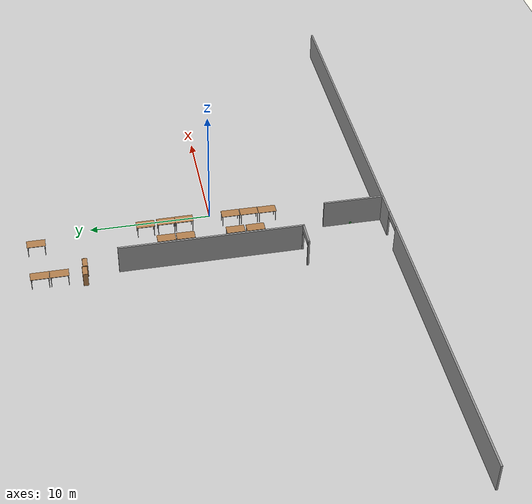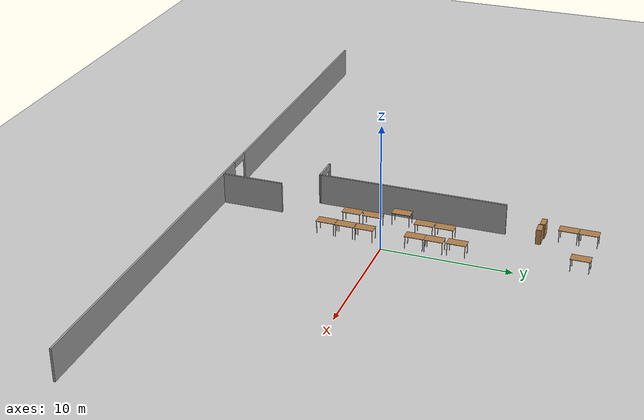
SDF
<sdf version="1.4">
 <world name="default">
  <model name="ground_plane">
   <static>1</static>
   <link name="link">
    <collision name="collision">
     <geometry><plane><normal>0 0 1</normal><size>100 100</size></plane></geometry>
    </collision>
    <visual name="visual">
     <cast_shadows>0</cast_shadows>
     <geometry><plane><normal>0 0 1</normal><size>100 100</size></plane></geometry>
     <material>
      <script><uri>file://media/materials/scripts/gazebo.material</uri><name>Gazebo/Grey</name></script>
     </material>
    </visual>
    <velocity_decay><linear>0</linear><angular>0</angular></velocity_decay>
   </link>
  </model>
  <model name="Shannon">
   <pose>-0.0406 0.68299 0 0 -0 0</pose>
   <link name="Wall_113">
    <pose>-6.33435 -7.42718 0 0 -0 3.12996</pose>
    <visual name="Wall_113_Visual_0">
     <pose>-0.982605 0 1.25 0 -0 0</pose>
     <geometry><box><size>0.174156 0.15 2.5</size></box></geometry>
     <material>
      <script><uri>file://media/materials/scripts/gazebo.material</uri><name>Gazebo/Grey</name></script>
      <ambient>1 1 1 1</ambient>
     </material>
    </visual>
    <collision name="Wall_113_Collision_0">
     <geometry><box><size>0.174156 0.15 2.5</size></box></geometry>
     <pose>-0.982605 0 1.25 0 -0 0</pose>
    </collision>
    <visual name="Wall_113_Visual_1">
     <pose>0.989375 0 1.25 0 -0 0</pose>
     <geometry><box><size>0.160617 0.15 2.5</size></box></geometry>
     <material>
      <script><uri>file://media/materials/scripts/gazebo.material</uri><name>Gazebo/Grey</name></script>
      <ambient>1 1 1 1</ambient>
     </material>
    </visual>
    <collision name="Wall_113_Collision_1">
     <geometry><box><size>0.160617 0.15 2.5</size></box></geometry>
     <pose>0.989375 0 1.25 0 -0 0</pose>
    </collision>
    <visual name="Wall_113_Visual_2">
     <pose>0.00677 0 2.25 0 -0 0</pose>
     <geometry><box><size>1.80459 0.15 0.5</size></box></geometry>
     <material>
      <script><uri>file://media/materials/scripts/gazebo.material</uri><name>Gazebo/Grey</name></script>
      <ambient>1 1 1 1</ambient>
     </material>
    </visual>
    <collision name="Wall_113_Collision_2">
     <geometry><box><size>1.80459 0.15 0.5</size></box></geometry>
     <pose>0.00677 0 2.25 0 -0 0</pose>
    </collision>
    <velocity_decay><linear>0</linear><angular>0</angular></velocity_decay>
   </link>
   <link name="Wall_12">
    <pose>-4.30964 -14.6736 0 0 -0 3.14159</pose>
    <visual name="Wall_12_Visual_0">
     <pose>-13.02 0 1.25 0 -0 0</pose>
     <geometry><box><size>27.46 0.15 2.5</size></box></geometry>
     <material>
      <script><uri>file://media/materials/scripts/gazebo.material</uri><name>Gazebo/Grey</name></script>
      <ambient>1 1 1 1</ambient>
     </material>
    </visual>
    <collision name="Wall_12_Collision_0">
     <geometry><box><size>27.46 0.15 2.5</size></box></geometry>
     <pose>-13.02 0 1.25 0 -0 0</pose>
    </collision>
    <visual name="Wall_12_Visual_1">
     <pose>14.6599 0 1.25 0 -0 0</pose>
     <geometry><box><size>24.1801 0.15 2.5</size></box></geometry>
     <material>
      <script><uri>file://media/materials/scripts/gazebo.material</uri><name>Gazebo/Grey</name></script>
      <ambient>1 1 1 1</ambient>
     </material>
    </visual>
    <collision name="Wall_12_Collision_1">
     <geometry><box><size>24.1801 0.15 2.5</size></box></geometry>
     <pose>14.6599 0 1.25 0 -0 0</pose>
    </collision>
    <visual name="Wall_12_Visual_2">
     <pose>1.63993 0 2.25 0 -0 0</pose>
     <geometry><box><size>1.85983 0.15 0.5</size></box></geometry>
     <material>
      <script><uri>file://media/materials/scripts/gazebo.material</uri><name>Gazebo/Grey</name></script>
      <ambient>1 1 1 1</ambient>
     </material>
    </visual>
    <collision name="Wall_12_Collision_2">
     <geometry><box><size>1.85983 0.15 0.5</size></box></geometry>
     <pose>1.63993 0 2.25 0 -0 0</pose>
    </collision>
    <velocity_decay><linear>0</linear><angular>0</angular></velocity_decay>
   </link>
   <link name="Wall_29">
    <collision name="Wall_29_Collision">
     <geometry><box><size>5 0.15 2.5</size></box></geometry>
     <pose>0 0 1.25 0 -0 0</pose>
    </collision>
    <visual name="Wall_29_Visual">
     <pose>0 0 1.25 0 -0 0</pose>
     <geometry><box><size>5 0.15 2.5</size></box></geometry>
     <material>
      <script><uri>file://media/materials/scripts/gazebo.material</uri><name>Gazebo/Grey</name></script>
      <ambient>1 1 1 1</ambient>
     </material>
    </visual>
    <pose>-2.95728 -12.2072 0 0 -0 1.5708</pose>
    <velocity_decay><linear>0</linear><angular>0</angular></velocity_decay>
   </link>
   <link name="Wall_37">
    <collision name="Wall_37_Collision">
     <geometry><box><size>15 0.15 2.5</size></box></geometry>
     <pose>0 0 1.25 0 -0 0</pose>
    </collision>
    <visual name="Wall_37_Visual">
     <pose>0 0 1.25 0 -0 0</pose>
     <geometry><box><size>15 0.15 2.5</size></box></geometry>
     <material>
      <script><uri>file://media/materials/scripts/gazebo.material</uri><name>Gazebo/Grey</name></script>
      <ambient>1 1 1 1</ambient>
     </material>
    </visual>
    <pose>-5.33974 -0.013741 0 0 -0 1.5708</pose>
    <velocity_decay><linear>0</linear><angular>0</angular></velocity_decay>
   </link>
   <static>1</static>
  </model>
  <model name="table_clone_clone">
   <static>1</static>
   <link name="link">
    <collision name="surface">
     <pose>0 0 1 0 -0 0</pose>
     <geometry><box><size>1.5 0.8 0.03</size></box></geometry>
    </collision>
    <visual name="visual1">
     <pose>0 0 1 0 -0 0</pose>
     <geometry><box><size>1.5 0.8 0.03</size></box></geometry>
     <material>
      <script><uri>file://media/materials/scripts/gazebo.material</uri><name>Gazebo/Wood</name></script>
     </material>
    </visual>
    <collision name="front_left_leg">
     <pose>0.68 0.38 0.5 0 -0 0</pose>
     <geometry><cylinder><radius>0.02</radius><length>1</length></cylinder></geometry>
    </collision>
    <visual name="front_left_leg">
     <pose>0.68 0.38 0.5 0 -0 0</pose>
     <geometry><cylinder><radius>0.02</radius><length>1</length></cylinder></geometry>
     <material>
      <script><uri>file://media/materials/scripts/gazebo.material</uri><name>Gazebo/Grey</name></script>
     </material>
    </visual>
    <collision name="front_right_leg">
     <pose>0.68 -0.38 0.5 0 -0 0</pose>
     <geometry><cylinder><radius>0.02</radius><length>1</length></cylinder></geometry>
    </collision>
    <visual name="front_right_leg">
     <pose>0.68 -0.38 0.5 0 -0 0</pose>
     <geometry><cylinder><radius>0.02</radius><length>1</length></cylinder></geometry>
     <material>
      <script><uri>file://media/materials/scripts/gazebo.material</uri><name>Gazebo/Grey</name></script>
     </material>
    </visual>
    <collision name="back_right_leg">
     <pose>-0.68 -0.38 0.5 0 -0 0</pose>
     <geometry><cylinder><radius>0.02</radius><length>1</length></cylinder></geometry>
    </collision>
    <visual name="back_right_leg">
     <pose>-0.68 -0.38 0.5 0 -0 0</pose>
     <geometry><cylinder><radius>0.02</radius><length>1</length></cylinder></geometry>
     <material>
      <script><uri>file://media/materials/scripts/gazebo.material</uri><name>Gazebo/Grey</name></script>
     </material>
    </visual>
    <collision name="back_left_leg">
     <pose>-0.68 0.38 0.5 0 -0 0</pose>
     <geometry><cylinder><radius>0.02</radius><length>1</length></cylinder></geometry>
    </collision>
    <visual name="back_left_leg">
     <pose>-0.68 0.38 0.5 0 -0 0</pose>
     <geometry><cylinder><radius>0.02</radius><length>1</length></cylinder></geometry>
     <material>
      <script><uri>file://media/materials/scripts/gazebo.material</uri><name>Gazebo/Grey</name></script>
     </material>
    </visual>
    <velocity_decay><linear>0</linear><angular>0</angular></velocity_decay>
   </link>
   <pose>-1.99003 14.4772 0 0 -0 1.57</pose>
  </model>
  <model name="table_clone_clone_1">
   <static>1</static>
   <link name="link">
    <collision name="surface">
     <pose>0 0 1 0 -0 0</pose>
     <geometry><box><size>1.5 0.8 0.03</size></box></geometry>
    </collision>
    <visual name="visual1">
     <pose>0 0 1 0 -0 0</pose>
     <geometry><box><size>1.5 0.8 0.03</size></box></geometry>
     <material>
      <script><uri>file://media/materials/scripts/gazebo.material</uri><name>Gazebo/Wood</name></script>
     </material>
    </visual>
    <collision name="front_left_leg">
     <pose>0.68 0.38 0.5 0 -0 0</pose>
     <geometry><cylinder><radius>0.02</radius><length>1</length></cylinder></geometry>
    </collision>
    <visual name="front_left_leg">
     <pose>0.68 0.38 0.5 0 -0 0</pose>
     <geometry><cylinder><radius>0.02</radius><length>1</length></cylinder></geometry>
     <material>
      <script><uri>file://media/materials/scripts/gazebo.material</uri><name>Gazebo/Grey</name></script>
     </material>
    </visual>
    <collision name="front_right_leg">
     <pose>0.68 -0.38 0.5 0 -0 0</pose>
     <geometry><cylinder><radius>0.02</radius><length>1</length></cylinder></geometry>
    </collision>
    <visual name="front_right_leg">
     <pose>0.68 -0.38 0.5 0 -0 0</pose>
     <geometry><cylinder><radius>0.02</radius><length>1</length></cylinder></geometry>
     <material>
      <script><uri>file://media/materials/scripts/gazebo.material</uri><name>Gazebo/Grey</name></script>
     </material>
    </visual>
    <collision name="back_right_leg">
     <pose>-0.68 -0.38 0.5 0 -0 0</pose>
     <geometry><cylinder><radius>0.02</radius><length>1</length></cylinder></geometry>
    </collision>
    <visual name="back_right_leg">
     <pose>-0.68 -0.38 0.5 0 -0 0</pose>
     <geometry><cylinder><radius>0.02</radius><length>1</length></cylinder></geometry>
     <material>
      <script><uri>file://media/materials/scripts/gazebo.material</uri><name>Gazebo/Grey</name></script>
     </material>
    </visual>
    <collision name="back_left_leg">
     <pose>-0.68 0.38 0.5 0 -0 0</pose>
     <geometry><cylinder><radius>0.02</radius><length>1</length></cylinder></geometry>
    </collision>
    <visual name="back_left_leg">
     <pose>-0.68 0.38 0.5 0 -0 0</pose>
     <geometry><cylinder><radius>0.02</radius><length>1</length></cylinder></geometry>
     <material>
      <script><uri>file://media/materials/scripts/gazebo.material</uri><name>Gazebo/Grey</name></script>
     </material>
    </visual>
    <velocity_decay><linear>0</linear><angular>0</angular></velocity_decay>
   </link>
   <pose>-5.84702 14.4105 0 0 -0 1.57</pose>
  </model>
  <model name="table_clone_clone_2">
   <static>1</static>
   <link name="link">
    <collision name="surface">
     <pose>0 0 1 0 -0 0</pose>
     <geometry><box><size>1.5 0.8 0.03</size></box></geometry>
    </collision>
    <visual name="visual1">
     <pose>0 0 1 0 -0 0</pose>
     <geometry><box><size>1.5 0.8 0.03</size></box></geometry>
     <material>
      <script><uri>file://media/materials/scripts/gazebo.material</uri><name>Gazebo/Wood</name></script>
     </material>
    </visual>
    <collision name="front_left_leg">
     <pose>0.68 0.38 0.5 0 -0 0</pose>
     <geometry><cylinder><radius>0.02</radius><length>1</length></cylinder></geometry>
    </collision>
    <visual name="front_left_leg">
     <pose>0.68 0.38 0.5 0 -0 0</pose>
     <geometry><cylinder><radius>0.02</radius><length>1</length></cylinder></geometry>
     <material>
      <script><uri>file://media/materials/scripts/gazebo.material</uri><name>Gazebo/Grey</name></script>
     </material>
    </visual>
    <collision name="front_right_leg">
     <pose>0.68 -0.38 0.5 0 -0 0</pose>
     <geometry><cylinder><radius>0.02</radius><length>1</length></cylinder></geometry>
    </collision>
    <visual name="front_right_leg">
     <pose>0.68 -0.38 0.5 0 -0 0</pose>
     <geometry><cylinder><radius>0.02</radius><length>1</length></cylinder></geometry>
     <material>
      <script><uri>file://media/materials/scripts/gazebo.material</uri><name>Gazebo/Grey</name></script>
     </material>
    </visual>
    <collision name="back_right_leg">
     <pose>-0.68 -0.38 0.5 0 -0 0</pose>
     <geometry><cylinder><radius>0.02</radius><length>1</length></cylinder></geometry>
    </collision>
    <visual name="back_right_leg">
     <pose>-0.68 -0.38 0.5 0 -0 0</pose>
     <geometry><cylinder><radius>0.02</radius><length>1</length></cylinder></geometry>
     <material>
      <script><uri>file://media/materials/scripts/gazebo.material</uri><name>Gazebo/Grey</name></script>
     </material>
    </visual>
    <collision name="back_left_leg">
     <pose>-0.68 0.38 0.5 0 -0 0</pose>
     <geometry><cylinder><radius>0.02</radius><length>1</length></cylinder></geometry>
    </collision>
    <visual name="back_left_leg">
     <pose>-0.68 0.38 0.5 0 -0 0</pose>
     <geometry><cylinder><radius>0.02</radius><length>1</length></cylinder></geometry>
     <material>
      <script><uri>file://media/materials/scripts/gazebo.material</uri><name>Gazebo/Grey</name></script>
     </material>
    </visual>
    <velocity_decay><linear>0</linear><angular>0</angular></velocity_decay>
   </link>
   <pose>-5.8483 12.882 0 0 -0 1.57</pose>
  </model>
  <model name="table_clone_clone_2_clone_clone">
   <static>1</static>
   <link name="link">
    <collision name="surface">
     <pose>0 0 1 0 -0 0</pose>
     <geometry><box><size>1.5 0.8 0.03</size></box></geometry>
    </collision>
    <visual name="visual1">
     <pose>0 0 1 0 -0 0</pose>
     <geometry><box><size>1.5 0.8 0.03</size></box></geometry>
     <material>
      <script><uri>file://media/materials/scripts/gazebo.material</uri><name>Gazebo/Wood</name></script>
     </material>
    </visual>
    <collision name="front_left_leg">
     <pose>0.68 0.38 0.5 0 -0 0</pose>
     <geometry><cylinder><radius>0.02</radius><length>1</length></cylinder></geometry>
    </collision>
    <visual name="front_left_leg">
     <pose>0.68 0.38 0.5 0 -0 0</pose>
     <geometry><cylinder><radius>0.02</radius><length>1</length></cylinder></geometry>
     <material>
      <script><uri>file://media/materials/scripts/gazebo.material</uri><name>Gazebo/Grey</name></script>
     </material>
    </visual>
    <collision name="front_right_leg">
     <pose>0.68 -0.38 0.5 0 -0 0</pose>
     <geometry><cylinder><radius>0.02</radius><length>1</length></cylinder></geometry>
    </collision>
    <visual name="front_right_leg">
     <pose>0.68 -0.38 0.5 0 -0 0</pose>
     <geometry><cylinder><radius>0.02</radius><length>1</length></cylinder></geometry>
     <material>
      <script><uri>file://media/materials/scripts/gazebo.material</uri><name>Gazebo/Grey</name></script>
     </material>
    </visual>
    <collision name="back_right_leg">
     <pose>-0.68 -0.38 0.5 0 -0 0</pose>
     <geometry><cylinder><radius>0.02</radius><length>1</length></cylinder></geometry>
    </collision>
    <visual name="back_right_leg">
     <pose>-0.68 -0.38 0.5 0 -0 0</pose>
     <geometry><cylinder><radius>0.02</radius><length>1</length></cylinder></geometry>
     <material>
      <script><uri>file://media/materials/scripts/gazebo.material</uri><name>Gazebo/Grey</name></script>
     </material>
    </visual>
    <collision name="back_left_leg">
     <pose>-0.68 0.38 0.5 0 -0 0</pose>
     <geometry><cylinder><radius>0.02</radius><length>1</length></cylinder></geometry>
    </collision>
    <visual name="back_left_leg">
     <pose>-0.68 0.38 0.5 0 -0 0</pose>
     <geometry><cylinder><radius>0.02</radius><length>1</length></cylinder></geometry>
     <material>
      <script><uri>file://media/materials/scripts/gazebo.material</uri><name>Gazebo/Grey</name></script>
     </material>
    </visual>
    <velocity_decay><linear>0</linear><angular>0</angular></velocity_decay>
   </link>
   <pose>-4.27242 0.333754 0 0 -0 1.57</pose>
  </model>
  <model name="table_clone_clone_21_clone_2_clone_0">
   <static>1</static>
   <link name="link">
    <collision name="surface">
     <pose>0 0 1 0 -0 0</pose>
     <geometry><box><size>1.5 0.8 0.03</size></box></geometry>
    </collision>
    <visual name="visual1">
     <pose>0 0 1 0 -0 0</pose>
     <geometry><box><size>1.5 0.8 0.03</size></box></geometry>
     <material>
      <script><uri>file://media/materials/scripts/gazebo.material</uri><name>Gazebo/Wood</name></script>
     </material>
    </visual>
    <collision name="front_left_leg">
     <pose>0.68 0.38 0.5 0 -0 0</pose>
     <geometry><cylinder><radius>0.02</radius><length>1</length></cylinder></geometry>
    </collision>
    <visual name="front_left_leg">
     <pose>0.68 0.38 0.5 0 -0 0</pose>
     <geometry><cylinder><radius>0.02</radius><length>1</length></cylinder></geometry>
     <material>
      <script><uri>file://media/materials/scripts/gazebo.material</uri><name>Gazebo/Grey</name></script>
     </material>
    </visual>
    <collision name="front_right_leg">
     <pose>0.68 -0.38 0.5 0 -0 0</pose>
     <geometry><cylinder><radius>0.02</radius><length>1</length></cylinder></geometry>
    </collision>
    <visual name="front_right_leg">
     <pose>0.68 -0.38 0.5 0 -0 0</pose>
     <geometry><cylinder><radius>0.02</radius><length>1</length></cylinder></geometry>
     <material>
      <script><uri>file://media/materials/scripts/gazebo.material</uri><name>Gazebo/Grey</name></script>
     </material>
    </visual>
    <collision name="back_right_leg">
     <pose>-0.68 -0.38 0.5 0 -0 0</pose>
     <geometry><cylinder><radius>0.02</radius><length>1</length></cylinder></geometry>
    </collision>
    <visual name="back_right_leg">
     <pose>-0.68 -0.38 0.5 0 -0 0</pose>
     <geometry><cylinder><radius>0.02</radius><length>1</length></cylinder></geometry>
     <material>
      <script><uri>file://media/materials/scripts/gazebo.material</uri><name>Gazebo/Grey</name></script>
     </material>
    </visual>
    <collision name="back_left_leg">
     <pose>-0.68 0.38 0.5 0 -0 0</pose>
     <geometry><cylinder><radius>0.02</radius><length>1</length></cylinder></geometry>
    </collision>
    <visual name="back_left_leg">
     <pose>-0.68 0.38 0.5 0 -0 0</pose>
     <geometry><cylinder><radius>0.02</radius><length>1</length></cylinder></geometry>
     <material>
      <script><uri>file://media/materials/scripts/gazebo.material</uri><name>Gazebo/Grey</name></script>
     </material>
    </visual>
    <velocity_decay><linear>0</linear><angular>0</angular></velocity_decay>
   </link>
   <pose>-3.18414 -3.29018 0 0 -0 1.57</pose>
  </model>
  <model name="table_clone_clone_21_clone_2_clone_1">
   <static>1</static>
   <link name="link">
    <collision name="surface">
     <pose>0 0 1 0 -0 0</pose>
     <geometry><box><size>1.5 0.8 0.03</size></box></geometry>
    </collision>
    <visual name="visual1">
     <pose>0 0 1 0 -0 0</pose>
     <geometry><box><size>1.5 0.8 0.03</size></box></geometry>
     <material>
      <script><uri>file://media/materials/scripts/gazebo.material</uri><name>Gazebo/Wood</name></script>
     </material>
    </visual>
    <collision name="front_left_leg">
     <pose>0.68 0.38 0.5 0 -0 0</pose>
     <geometry><cylinder><radius>0.02</radius><length>1</length></cylinder></geometry>
    </collision>
    <visual name="front_left_leg">
     <pose>0.68 0.38 0.5 0 -0 0</pose>
     <geometry><cylinder><radius>0.02</radius><length>1</length></cylinder></geometry>
     <material>
      <script><uri>file://media/materials/scripts/gazebo.material</uri><name>Gazebo/Grey</name></script>
     </material>
    </visual>
    <collision name="front_right_leg">
     <pose>0.68 -0.38 0.5 0 -0 0</pose>
     <geometry><cylinder><radius>0.02</radius><length>1</length></cylinder></geometry>
    </collision>
    <visual name="front_right_leg">
     <pose>0.68 -0.38 0.5 0 -0 0</pose>
     <geometry><cylinder><radius>0.02</radius><length>1</length></cylinder></geometry>
     <material>
      <script><uri>file://media/materials/scripts/gazebo.material</uri><name>Gazebo/Grey</name></script>
     </material>
    </visual>
    <collision name="back_right_leg">
     <pose>-0.68 -0.38 0.5 0 -0 0</pose>
     <geometry><cylinder><radius>0.02</radius><length>1</length></cylinder></geometry>
    </collision>
    <visual name="back_right_leg">
     <pose>-0.68 -0.38 0.5 0 -0 0</pose>
     <geometry><cylinder><radius>0.02</radius><length>1</length></cylinder></geometry>
     <material>
      <script><uri>file://media/materials/scripts/gazebo.material</uri><name>Gazebo/Grey</name></script>
     </material>
    </visual>
    <collision name="back_left_leg">
     <pose>-0.68 0.38 0.5 0 -0 0</pose>
     <geometry><cylinder><radius>0.02</radius><length>1</length></cylinder></geometry>
    </collision>
    <visual name="back_left_leg">
     <pose>-0.68 0.38 0.5 0 -0 0</pose>
     <geometry><cylinder><radius>0.02</radius><length>1</length></cylinder></geometry>
     <material>
      <script><uri>file://media/materials/scripts/gazebo.material</uri><name>Gazebo/Grey</name></script>
     </material>
    </visual>
    <velocity_decay><linear>0</linear><angular>0</angular></velocity_decay>
   </link>
   <pose>-3.16691 -1.63439 0 0 -0 1.57</pose>
  </model>
  <model name="table_clone_clone_21_clone_2_clone_2">
   <static>1</static>
   <link name="link">
    <collision name="surface">
     <pose>0 0 1 0 -0 0</pose>
     <geometry><box><size>1.5 0.8 0.03</size></box></geometry>
    </collision>
    <visual name="visual1">
     <pose>0 0 1 0 -0 0</pose>
     <geometry><box><size>1.5 0.8 0.03</size></box></geometry>
     <material>
      <script><uri>file://media/materials/scripts/gazebo.material</uri><name>Gazebo/Wood</name></script>
     </material>
    </visual>
    <collision name="front_left_leg">
     <pose>0.68 0.38 0.5 0 -0 0</pose>
     <geometry><cylinder><radius>0.02</radius><length>1</length></cylinder></geometry>
    </collision>
    <visual name="front_left_leg">
     <pose>0.68 0.38 0.5 0 -0 0</pose>
     <geometry><cylinder><radius>0.02</radius><length>1</length></cylinder></geometry>
     <material>
      <script><uri>file://media/materials/scripts/gazebo.material</uri><name>Gazebo/Grey</name></script>
     </material>
    </visual>
    <collision name="front_right_leg">
     <pose>0.68 -0.38 0.5 0 -0 0</pose>
     <geometry><cylinder><radius>0.02</radius><length>1</length></cylinder></geometry>
    </collision>
    <visual name="front_right_leg">
     <pose>0.68 -0.38 0.5 0 -0 0</pose>
     <geometry><cylinder><radius>0.02</radius><length>1</length></cylinder></geometry>
     <material>
      <script><uri>file://media/materials/scripts/gazebo.material</uri><name>Gazebo/Grey</name></script>
     </material>
    </visual>
    <collision name="back_right_leg">
     <pose>-0.68 -0.38 0.5 0 -0 0</pose>
     <geometry><cylinder><radius>0.02</radius><length>1</length></cylinder></geometry>
    </collision>
    <visual name="back_right_leg">
     <pose>-0.68 -0.38 0.5 0 -0 0</pose>
     <geometry><cylinder><radius>0.02</radius><length>1</length></cylinder></geometry>
     <material>
      <script><uri>file://media/materials/scripts/gazebo.material</uri><name>Gazebo/Grey</name></script>
     </material>
    </visual>
    <collision name="back_left_leg">
     <pose>-0.68 0.38 0.5 0 -0 0</pose>
     <geometry><cylinder><radius>0.02</radius><length>1</length></cylinder></geometry>
    </collision>
    <visual name="back_left_leg">
     <pose>-0.68 0.38 0.5 0 -0 0</pose>
     <geometry><cylinder><radius>0.02</radius><length>1</length></cylinder></geometry>
     <material>
      <script><uri>file://media/materials/scripts/gazebo.material</uri><name>Gazebo/Grey</name></script>
     </material>
    </visual>
    <velocity_decay><linear>0</linear><angular>0</angular></velocity_decay>
   </link>
   <pose>-3.17484 2.47856 0 0 -0 1.57</pose>
  </model>
  <model name="table_clone_clone_21_clone_2_clone_3">
   <static>1</static>
   <link name="link">
    <collision name="surface">
     <pose>0 0 1 0 -0 0</pose>
     <geometry><box><size>1.5 0.8 0.03</size></box></geometry>
    </collision>
    <visual name="visual1">
     <pose>0 0 1 0 -0 0</pose>
     <geometry><box><size>1.5 0.8 0.03</size></box></geometry>
     <material>
      <script><uri>file://media/materials/scripts/gazebo.material</uri><name>Gazebo/Wood</name></script>
     </material>
    </visual>
    <collision name="front_left_leg">
     <pose>0.68 0.38 0.5 0 -0 0</pose>
     <geometry><cylinder><radius>0.02</radius><length>1</length></cylinder></geometry>
    </collision>
    <visual name="front_left_leg">
     <pose>0.68 0.38 0.5 0 -0 0</pose>
     <geometry><cylinder><radius>0.02</radius><length>1</length></cylinder></geometry>
     <material>
      <script><uri>file://media/materials/scripts/gazebo.material</uri><name>Gazebo/Grey</name></script>
     </material>
    </visual>
    <collision name="front_right_leg">
     <pose>0.68 -0.38 0.5 0 -0 0</pose>
     <geometry><cylinder><radius>0.02</radius><length>1</length></cylinder></geometry>
    </collision>
    <visual name="front_right_leg">
     <pose>0.68 -0.38 0.5 0 -0 0</pose>
     <geometry><cylinder><radius>0.02</radius><length>1</length></cylinder></geometry>
     <material>
      <script><uri>file://media/materials/scripts/gazebo.material</uri><name>Gazebo/Grey</name></script>
     </material>
    </visual>
    <collision name="back_right_leg">
     <pose>-0.68 -0.38 0.5 0 -0 0</pose>
     <geometry><cylinder><radius>0.02</radius><length>1</length></cylinder></geometry>
    </collision>
    <visual name="back_right_leg">
     <pose>-0.68 -0.38 0.5 0 -0 0</pose>
     <geometry><cylinder><radius>0.02</radius><length>1</length></cylinder></geometry>
     <material>
      <script><uri>file://media/materials/scripts/gazebo.material</uri><name>Gazebo/Grey</name></script>
     </material>
    </visual>
    <collision name="back_left_leg">
     <pose>-0.68 0.38 0.5 0 -0 0</pose>
     <geometry><cylinder><radius>0.02</radius><length>1</length></cylinder></geometry>
    </collision>
    <visual name="back_left_leg">
     <pose>-0.68 0.38 0.5 0 -0 0</pose>
     <geometry><cylinder><radius>0.02</radius><length>1</length></cylinder></geometry>
     <material>
      <script><uri>file://media/materials/scripts/gazebo.material</uri><name>Gazebo/Grey</name></script>
     </material>
    </visual>
    <velocity_decay><linear>0</linear><angular>0</angular></velocity_decay>
   </link>
   <pose>-3.17401 4.06016 0 0 -0 1.57</pose>
  </model>
  <model name="table_clone_clone_21_clone_2_clone_5">
   <static>1</static>
   <link name="link">
    <collision name="surface">
     <pose>0 0 1 0 -0 0</pose>
     <geometry><box><size>1.5 0.8 0.03</size></box></geometry>
    </collision>
    <visual name="visual1">
     <pose>0 0 1 0 -0 0</pose>
     <geometry><box><size>1.5 0.8 0.03</size></box></geometry>
     <material>
      <script><uri>file://media/materials/scripts/gazebo.material</uri><name>Gazebo/Wood</name></script>
     </material>
    </visual>
    <collision name="front_left_leg">
     <pose>0.68 0.38 0.5 0 -0 0</pose>
     <geometry><cylinder><radius>0.02</radius><length>1</length></cylinder></geometry>
    </collision>
    <visual name="front_left_leg">
     <pose>0.68 0.38 0.5 0 -0 0</pose>
     <geometry><cylinder><radius>0.02</radius><length>1</length></cylinder></geometry>
     <material>
      <script><uri>file://media/materials/scripts/gazebo.material</uri><name>Gazebo/Grey</name></script>
     </material>
    </visual>
    <collision name="front_right_leg">
     <pose>0.68 -0.38 0.5 0 -0 0</pose>
     <geometry><cylinder><radius>0.02</radius><length>1</length></cylinder></geometry>
    </collision>
    <visual name="front_right_leg">
     <pose>0.68 -0.38 0.5 0 -0 0</pose>
     <geometry><cylinder><radius>0.02</radius><length>1</length></cylinder></geometry>
     <material>
      <script><uri>file://media/materials/scripts/gazebo.material</uri><name>Gazebo/Grey</name></script>
     </material>
    </visual>
    <collision name="back_right_leg">
     <pose>-0.68 -0.38 0.5 0 -0 0</pose>
     <geometry><cylinder><radius>0.02</radius><length>1</length></cylinder></geometry>
    </collision>
    <visual name="back_right_leg">
     <pose>-0.68 -0.38 0.5 0 -0 0</pose>
     <geometry><cylinder><radius>0.02</radius><length>1</length></cylinder></geometry>
     <material>
      <script><uri>file://media/materials/scripts/gazebo.material</uri><name>Gazebo/Grey</name></script>
     </material>
    </visual>
    <collision name="back_left_leg">
     <pose>-0.68 0.38 0.5 0 -0 0</pose>
     <geometry><cylinder><radius>0.02</radius><length>1</length></cylinder></geometry>
    </collision>
    <visual name="back_left_leg">
     <pose>-0.68 0.38 0.5 0 -0 0</pose>
     <geometry><cylinder><radius>0.02</radius><length>1</length></cylinder></geometry>
     <material>
      <script><uri>file://media/materials/scripts/gazebo.material</uri><name>Gazebo/Grey</name></script>
     </material>
    </visual>
    <velocity_decay><linear>0</linear><angular>0</angular></velocity_decay>
   </link>
   <pose>-1.13551 2.32764 0 0 -0 1.57</pose>
  </model>
  <model name="table_clone_clone_21_clone_2_clone_6">
   <static>1</static>
   <link name="link">
    <collision name="surface">
     <pose>0 0 1 0 -0 0</pose>
     <geometry><box><size>1.5 0.8 0.03</size></box></geometry>
    </collision>
    <visual name="visual1">
     <pose>0 0 1 0 -0 0</pose>
     <geometry><box><size>1.5 0.8 0.03</size></box></geometry>
     <material>
      <script><uri>file://media/materials/scripts/gazebo.material</uri><name>Gazebo/Wood</name></script>
     </material>
    </visual>
    <collision name="front_left_leg">
     <pose>0.68 0.38 0.5 0 -0 0</pose>
     <geometry><cylinder><radius>0.02</radius><length>1</length></cylinder></geometry>
    </collision>
    <visual name="front_left_leg">
     <pose>0.68 0.38 0.5 0 -0 0</pose>
     <geometry><cylinder><radius>0.02</radius><length>1</length></cylinder></geometry>
     <material>
      <script><uri>file://media/materials/scripts/gazebo.material</uri><name>Gazebo/Grey</name></script>
     </material>
    </visual>
    <collision name="front_right_leg">
     <pose>0.68 -0.38 0.5 0 -0 0</pose>
     <geometry><cylinder><radius>0.02</radius><length>1</length></cylinder></geometry>
    </collision>
    <visual name="front_right_leg">
     <pose>0.68 -0.38 0.5 0 -0 0</pose>
     <geometry><cylinder><radius>0.02</radius><length>1</length></cylinder></geometry>
     <material>
      <script><uri>file://media/materials/scripts/gazebo.material</uri><name>Gazebo/Grey</name></script>
     </material>
    </visual>
    <collision name="back_right_leg">
     <pose>-0.68 -0.38 0.5 0 -0 0</pose>
     <geometry><cylinder><radius>0.02</radius><length>1</length></cylinder></geometry>
    </collision>
    <visual name="back_right_leg">
     <pose>-0.68 -0.38 0.5 0 -0 0</pose>
     <geometry><cylinder><radius>0.02</radius><length>1</length></cylinder></geometry>
     <material>
      <script><uri>file://media/materials/scripts/gazebo.material</uri><name>Gazebo/Grey</name></script>
     </material>
    </visual>
    <collision name="back_left_leg">
     <pose>-0.68 0.38 0.5 0 -0 0</pose>
     <geometry><cylinder><radius>0.02</radius><length>1</length></cylinder></geometry>
    </collision>
    <visual name="back_left_leg">
     <pose>-0.68 0.38 0.5 0 -0 0</pose>
     <geometry><cylinder><radius>0.02</radius><length>1</length></cylinder></geometry>
     <material>
      <script><uri>file://media/materials/scripts/gazebo.material</uri><name>Gazebo/Grey</name></script>
     </material>
    </visual>
    <velocity_decay><linear>0</linear><angular>0</angular></velocity_decay>
   </link>
   <pose>-1.14403 3.81898 0 0 -0 1.57</pose>
  </model>
  <model name="table_clone_clone_21_clone_2_clone_7">
   <static>1</static>
   <link name="link">
    <collision name="surface">
     <pose>0 0 1 0 -0 0</pose>
     <geometry><box><size>1.5 0.8 0.03</size></box></geometry>
    </collision>
    <visual name="visual1">
     <pose>0 0 1 0 -0 0</pose>
     <geometry><box><size>1.5 0.8 0.03</size></box></geometry>
     <material>
      <script><uri>file://media/materials/scripts/gazebo.material</uri><name>Gazebo/Wood</name></script>
     </material>
    </visual>
    <collision name="front_left_leg">
     <pose>0.68 0.38 0.5 0 -0 0</pose>
     <geometry><cylinder><radius>0.02</radius><length>1</length></cylinder></geometry>
    </collision>
    <visual name="front_left_leg">
     <pose>0.68 0.38 0.5 0 -0 0</pose>
     <geometry><cylinder><radius>0.02</radius><length>1</length></cylinder></geometry>
     <material>
      <script><uri>file://media/materials/scripts/gazebo.material</uri><name>Gazebo/Grey</name></script>
     </material>
    </visual>
    <collision name="front_right_leg">
     <pose>0.68 -0.38 0.5 0 -0 0</pose>
     <geometry><cylinder><radius>0.02</radius><length>1</length></cylinder></geometry>
    </collision>
    <visual name="front_right_leg">
     <pose>0.68 -0.38 0.5 0 -0 0</pose>
     <geometry><cylinder><radius>0.02</radius><length>1</length></cylinder></geometry>
     <material>
      <script><uri>file://media/materials/scripts/gazebo.material</uri><name>Gazebo/Grey</name></script>
     </material>
    </visual>
    <collision name="back_right_leg">
     <pose>-0.68 -0.38 0.5 0 -0 0</pose>
     <geometry><cylinder><radius>0.02</radius><length>1</length></cylinder></geometry>
    </collision>
    <visual name="back_right_leg">
     <pose>-0.68 -0.38 0.5 0 -0 0</pose>
     <geometry><cylinder><radius>0.02</radius><length>1</length></cylinder></geometry>
     <material>
      <script><uri>file://media/materials/scripts/gazebo.material</uri><name>Gazebo/Grey</name></script>
     </material>
    </visual>
    <collision name="back_left_leg">
     <pose>-0.68 0.38 0.5 0 -0 0</pose>
     <geometry><cylinder><radius>0.02</radius><length>1</length></cylinder></geometry>
    </collision>
    <visual name="back_left_leg">
     <pose>-0.68 0.38 0.5 0 -0 0</pose>
     <geometry><cylinder><radius>0.02</radius><length>1</length></cylinder></geometry>
     <material>
      <script><uri>file://media/materials/scripts/gazebo.material</uri><name>Gazebo/Grey</name></script>
     </material>
    </visual>
    <velocity_decay><linear>0</linear><angular>0</angular></velocity_decay>
   </link>
   <pose>-1.20862 5.52708 0 0 -0 1.57</pose>
  </model>
  <model name="table_clone_clone_21_clone_2_clone_5_clone">
   <static>1</static>
   <link name="link">
    <collision name="surface">
     <pose>0 0 1 0 -0 0</pose>
     <geometry><box><size>1.5 0.8 0.03</size></box></geometry>
    </collision>
    <visual name="visual1">
     <pose>0 0 1 0 -0 0</pose>
     <geometry><box><size>1.5 0.8 0.03</size></box></geometry>
     <material>
      <script><uri>file://media/materials/scripts/gazebo.material</uri><name>Gazebo/Wood</name></script>
     </material>
    </visual>
    <collision name="front_left_leg">
     <pose>0.68 0.38 0.5 0 -0 0</pose>
     <geometry><cylinder><radius>0.02</radius><length>1</length></cylinder></geometry>
    </collision>
    <visual name="front_left_leg">
     <pose>0.68 0.38 0.5 0 -0 0</pose>
     <geometry><cylinder><radius>0.02</radius><length>1</length></cylinder></geometry>
     <material>
      <script><uri>file://media/materials/scripts/gazebo.material</uri><name>Gazebo/Grey</name></script>
     </material>
    </visual>
    <collision name="front_right_leg">
     <pose>0.68 -0.38 0.5 0 -0 0</pose>
     <geometry><cylinder><radius>0.02</radius><length>1</length></cylinder></geometry>
    </collision>
    <visual name="front_right_leg">
     <pose>0.68 -0.38 0.5 0 -0 0</pose>
     <geometry><cylinder><radius>0.02</radius><length>1</length></cylinder></geometry>
     <material>
      <script><uri>file://media/materials/scripts/gazebo.material</uri><name>Gazebo/Grey</name></script>
     </material>
    </visual>
    <collision name="back_right_leg">
     <pose>-0.68 -0.38 0.5 0 -0 0</pose>
     <geometry><cylinder><radius>0.02</radius><length>1</length></cylinder></geometry>
    </collision>
    <visual name="back_right_leg">
     <pose>-0.68 -0.38 0.5 0 -0 0</pose>
     <geometry><cylinder><radius>0.02</radius><length>1</length></cylinder></geometry>
     <material>
      <script><uri>file://media/materials/scripts/gazebo.material</uri><name>Gazebo/Grey</name></script>
     </material>
    </visual>
    <collision name="back_left_leg">
     <pose>-0.68 0.38 0.5 0 -0 0</pose>
     <geometry><cylinder><radius>0.02</radius><length>1</length></cylinder></geometry>
    </collision>
    <visual name="back_left_leg">
     <pose>-0.68 0.38 0.5 0 -0 0</pose>
     <geometry><cylinder><radius>0.02</radius><length>1</length></cylinder></geometry>
     <material>
      <script><uri>file://media/materials/scripts/gazebo.material</uri><name>Gazebo/Grey</name></script>
     </material>
    </visual>
    <velocity_decay><linear>0</linear><angular>0</angular></velocity_decay>
   </link>
   <pose>-1.10206 -1.57479 0 0 -0 1.57</pose>
  </model>
  <model name="table_clone_clone_21_clone_2_clone_5_clone_0">
   <static>1</static>
   <link name="link">
    <collision name="surface">
     <pose>0 0 1 0 -0 0</pose>
     <geometry><box><size>1.5 0.8 0.03</size></box></geometry>
    </collision>
    <visual name="visual1">
     <pose>0 0 1 0 -0 0</pose>
     <geometry><box><size>1.5 0.8 0.03</size></box></geometry>
     <material>
      <script><uri>file://media/materials/scripts/gazebo.material</uri><name>Gazebo/Wood</name></script>
     </material>
    </visual>
    <collision name="front_left_leg">
     <pose>0.68 0.38 0.5 0 -0 0</pose>
     <geometry><cylinder><radius>0.02</radius><length>1</length></cylinder></geometry>
    </collision>
    <visual name="front_left_leg">
     <pose>0.68 0.38 0.5 0 -0 0</pose>
     <geometry><cylinder><radius>0.02</radius><length>1</length></cylinder></geometry>
     <material>
      <script><uri>file://media/materials/scripts/gazebo.material</uri><name>Gazebo/Grey</name></script>
     </material>
    </visual>
    <collision name="front_right_leg">
     <pose>0.68 -0.38 0.5 0 -0 0</pose>
     <geometry><cylinder><radius>0.02</radius><length>1</length></cylinder></geometry>
    </collision>
    <visual name="front_right_leg">
     <pose>0.68 -0.38 0.5 0 -0 0</pose>
     <geometry><cylinder><radius>0.02</radius><length>1</length></cylinder></geometry>
     <material>
      <script><uri>file://media/materials/scripts/gazebo.material</uri><name>Gazebo/Grey</name></script>
     </material>
    </visual>
    <collision name="back_right_leg">
     <pose>-0.68 -0.38 0.5 0 -0 0</pose>
     <geometry><cylinder><radius>0.02</radius><length>1</length></cylinder></geometry>
    </collision>
    <visual name="back_right_leg">
     <pose>-0.68 -0.38 0.5 0 -0 0</pose>
     <geometry><cylinder><radius>0.02</radius><length>1</length></cylinder></geometry>
     <material>
      <script><uri>file://media/materials/scripts/gazebo.material</uri><name>Gazebo/Grey</name></script>
     </material>
    </visual>
    <collision name="back_left_leg">
     <pose>-0.68 0.38 0.5 0 -0 0</pose>
     <geometry><cylinder><radius>0.02</radius><length>1</length></cylinder></geometry>
    </collision>
    <visual name="back_left_leg">
     <pose>-0.68 0.38 0.5 0 -0 0</pose>
     <geometry><cylinder><radius>0.02</radius><length>1</length></cylinder></geometry>
     <material>
      <script><uri>file://media/materials/scripts/gazebo.material</uri><name>Gazebo/Grey</name></script>
     </material>
    </visual>
    <velocity_decay><linear>0</linear><angular>0</angular></velocity_decay>
   </link>
   <pose>-1.10864 -3.12075 0 0 -0 1.57</pose>
  </model>
  <model name="table_clone_clone_21_clone_2_clone_5_clone_1">
   <static>1</static>
   <link name="link">
    <collision name="surface">
     <pose>0 0 1 0 -0 0</pose>
     <geometry><box><size>1.5 0.8 0.03</size></box></geometry>
    </collision>
    <visual name="visual1">
     <pose>0 0 1 0 -0 0</pose>
     <geometry><box><size>1.5 0.8 0.03</size></box></geometry>
     <material>
      <script><uri>file://media/materials/scripts/gazebo.material</uri><name>Gazebo/Wood</name></script>
     </material>
    </visual>
    <collision name="front_left_leg">
     <pose>0.68 0.38 0.5 0 -0 0</pose>
     <geometry><cylinder><radius>0.02</radius><length>1</length></cylinder></geometry>
    </collision>
    <visual name="front_left_leg">
     <pose>0.68 0.38 0.5 0 -0 0</pose>
     <geometry><cylinder><radius>0.02</radius><length>1</length></cylinder></geometry>
     <material>
      <script><uri>file://media/materials/scripts/gazebo.material</uri><name>Gazebo/Grey</name></script>
     </material>
    </visual>
    <collision name="front_right_leg">
     <pose>0.68 -0.38 0.5 0 -0 0</pose>
     <geometry><cylinder><radius>0.02</radius><length>1</length></cylinder></geometry>
    </collision>
    <visual name="front_right_leg">
     <pose>0.68 -0.38 0.5 0 -0 0</pose>
     <geometry><cylinder><radius>0.02</radius><length>1</length></cylinder></geometry>
     <material>
      <script><uri>file://media/materials/scripts/gazebo.material</uri><name>Gazebo/Grey</name></script>
     </material>
    </visual>
    <collision name="back_right_leg">
     <pose>-0.68 -0.38 0.5 0 -0 0</pose>
     <geometry><cylinder><radius>0.02</radius><length>1</length></cylinder></geometry>
    </collision>
    <visual name="back_right_leg">
     <pose>-0.68 -0.38 0.5 0 -0 0</pose>
     <geometry><cylinder><radius>0.02</radius><length>1</length></cylinder></geometry>
     <material>
      <script><uri>file://media/materials/scripts/gazebo.material</uri><name>Gazebo/Grey</name></script>
     </material>
    </visual>
    <collision name="back_left_leg">
     <pose>-0.68 0.38 0.5 0 -0 0</pose>
     <geometry><cylinder><radius>0.02</radius><length>1</length></cylinder></geometry>
    </collision>
    <visual name="back_left_leg">
     <pose>-0.68 0.38 0.5 0 -0 0</pose>
     <geometry><cylinder><radius>0.02</radius><length>1</length></cylinder></geometry>
     <material>
      <script><uri>file://media/materials/scripts/gazebo.material</uri><name>Gazebo/Grey</name></script>
     </material>
    </visual>
    <velocity_decay><linear>0</linear><angular>0</angular></velocity_decay>
   </link>
   <pose>-1.13612 -4.64039 0 0 -0 1.57</pose>
  </model>
  <model name="bookshelf_9">
   <static>1</static>
   <link name="link">
    <inertial><mass>1</mass></inertial>
    <collision name="back">
     <pose>0 0.005 0.6 0 -0 0</pose>
     <geometry><box><size>0.9 0.01 1.2</size></box></geometry>
    </collision>
    <visual name="visual1">
     <pose>0 0.005 0.6 0 -0 0</pose>
     <geometry><box><size>0.9 0.01 1.2</size></box></geometry>
     <material>
      <script><uri>file://media/materials/scripts/gazebo.material</uri><name>Gazebo/Wood</name></script>
     </material>
    </visual>
    <collision name="left_side">
     <pose>0.45 -0.195 0.6 0 -0 0</pose>
     <geometry><box><size>0.02 0.4 1.2</size></box></geometry>
    </collision>
    <visual name="visual2">
     <pose>0.45 -0.195 0.6 0 -0 0</pose>
     <geometry><box><size>0.02 0.4 1.2</size></box></geometry>
     <material>
      <script><uri>file://media/materials/scripts/gazebo.material</uri><name>Gazebo/Wood</name></script>
     </material>
    </visual>
    <collision name="right_side">
     <pose>-0.45 -0.195 0.6 0 -0 0</pose>
     <geometry><box><size>0.02 0.4 1.2</size></box></geometry>
    </collision>
    <visual name="visual3">
     <pose>-0.45 -0.195 0.6 0 -0 0</pose>
     <geometry><box><size>0.02 0.4 1.2</size></box></geometry>
     <material>
      <script><uri>file://media/materials/scripts/gazebo.material</uri><name>Gazebo/Wood</name></script>
     </material>
    </visual>
    <collision name="bottom">
     <pose>0 -0.195 0.03 0 -0 0</pose>
     <geometry><box><size>0.88 0.4 0.06</size></box></geometry>
    </collision>
    <visual name="visual4">
     <pose>0 -0.195 0.03 0 -0 0</pose>
     <geometry><box><size>0.88 0.4 0.06</size></box></geometry>
     <material>
      <script><uri>file://media/materials/scripts/gazebo.material</uri><name>Gazebo/Wood</name></script>
     </material>
    </visual>
    <collision name="top">
     <pose>0 -0.195 1.19 0 -0 0</pose>
     <geometry><box><size>0.88 0.4 0.02</size></box></geometry>
    </collision>
    <visual name="visual5">
     <pose>0 -0.195 1.19 0 -0 0</pose>
     <geometry><box><size>0.88 0.4 0.02</size></box></geometry>
     <material>
      <script><uri>file://media/materials/scripts/gazebo.material</uri><name>Gazebo/Wood</name></script>
     </material>
    </visual>
    <collision name="low_shelf">
     <pose>0 -0.195 0.43 0 -0 0</pose>
     <geometry><box><size>0.88 0.4 0.02</size></box></geometry>
    </collision>
    <visual name="visual6">
     <pose>0 -0.195 0.43 0 -0 0</pose>
     <geometry><box><size>0.88 0.4 0.02</size></box></geometry>
     <material>
      <script><uri>file://media/materials/scripts/gazebo.material</uri><name>Gazebo/Wood</name></script>
     </material>
    </visual>
    <collision name="high_shelf">
     <pose>0 -0.195 0.8 0 -0 0</pose>
     <geometry><box><size>0.88 0.4 0.02</size></box></geometry>
    </collision>
    <visual name="visual7">
     <pose>0 -0.195 0.8 0 -0 0</pose>
     <geometry><box><size>0.88 0.4 0.02</size></box></geometry>
     <material>
      <script><uri>file://media/materials/scripts/gazebo.material</uri><name>Gazebo/Wood</name></script>
     </material>
    </visual>
    <velocity_decay><linear>0</linear><angular>0</angular></velocity_decay>
   </link>
   <pose>-6.08586 11.0844 0 0 -0 0</pose>
  </model>
  <model name="bookshelf_10">
   <static>1</static>
   <link name="link">
    <inertial><mass>1</mass></inertial>
    <collision name="back">
     <pose>0 0.005 0.6 0 -0 0</pose>
     <geometry><box><size>0.9 0.01 1.2</size></box></geometry>
    </collision>
    <visual name="visual1">
     <pose>0 0.005 0.6 0 -0 0</pose>
     <geometry><box><size>0.9 0.01 1.2</size></box></geometry>
     <material>
      <script><uri>file://media/materials/scripts/gazebo.material</uri><name>Gazebo/Wood</name></script>
     </material>
    </visual>
    <collision name="left_side">
     <pose>0.45 -0.195 0.6 0 -0 0</pose>
     <geometry><box><size>0.02 0.4 1.2</size></box></geometry>
    </collision>
    <visual name="visual2">
     <pose>0.45 -0.195 0.6 0 -0 0</pose>
     <geometry><box><size>0.02 0.4 1.2</size></box></geometry>
     <material>
      <script><uri>file://media/materials/scripts/gazebo.material</uri><name>Gazebo/Wood</name></script>
     </material>
    </visual>
    <collision name="right_side">
     <pose>-0.45 -0.195 0.6 0 -0 0</pose>
     <geometry><box><size>0.02 0.4 1.2</size></box></geometry>
    </collision>
    <visual name="visual3">
     <pose>-0.45 -0.195 0.6 0 -0 0</pose>
     <geometry><box><size>0.02 0.4 1.2</size></box></geometry>
     <material>
      <script><uri>file://media/materials/scripts/gazebo.material</uri><name>Gazebo/Wood</name></script>
     </material>
    </visual>
    <collision name="bottom">
     <pose>0 -0.195 0.03 0 -0 0</pose>
     <geometry><box><size>0.88 0.4 0.06</size></box></geometry>
    </collision>
    <visual name="visual4">
     <pose>0 -0.195 0.03 0 -0 0</pose>
     <geometry><box><size>0.88 0.4 0.06</size></box></geometry>
     <material>
      <script><uri>file://media/materials/scripts/gazebo.material</uri><name>Gazebo/Wood</name></script>
     </material>
    </visual>
    <collision name="top">
     <pose>0 -0.195 1.19 0 -0 0</pose>
     <geometry><box><size>0.88 0.4 0.02</size></box></geometry>
    </collision>
    <visual name="visual5">
     <pose>0 -0.195 1.19 0 -0 0</pose>
     <geometry><box><size>0.88 0.4 0.02</size></box></geometry>
     <material>
      <script><uri>file://media/materials/scripts/gazebo.material</uri><name>Gazebo/Wood</name></script>
     </material>
    </visual>
    <collision name="low_shelf">
     <pose>0 -0.195 0.43 0 -0 0</pose>
     <geometry><box><size>0.88 0.4 0.02</size></box></geometry>
    </collision>
    <visual name="visual6">
     <pose>0 -0.195 0.43 0 -0 0</pose>
     <geometry><box><size>0.88 0.4 0.02</size></box></geometry>
     <material>
      <script><uri>file://media/materials/scripts/gazebo.material</uri><name>Gazebo/Wood</name></script>
     </material>
    </visual>
    <collision name="high_shelf">
     <pose>0 -0.195 0.8 0 -0 0</pose>
     <geometry><box><size>0.88 0.4 0.02</size></box></geometry>
    </collision>
    <visual name="visual7">
     <pose>0 -0.195 0.8 0 -0 0</pose>
     <geometry><box><size>0.88 0.4 0.02</size></box></geometry>
     <material>
      <script><uri>file://media/materials/scripts/gazebo.material</uri><name>Gazebo/Wood</name></script>
     </material>
    </visual>
    <velocity_decay><linear>0</linear><angular>0</angular></velocity_decay>
   </link>
   <pose>-5.11219 11.0026 0 0 -0 0</pose>
  </model>
  <model name="unit_cylinder">
   <pose>-3.08185 -11.3524 0.1 1.57084 -0.00013 1.57576</pose>
   <link name="unit_cylinder::unit_cylinder::unit_cylinder::unit_cylinder::unit_cylinder::unit_cylinder::link">
    <inertial>
     <mass>1</mass>
     <inertia><ixx>0.145833</ixx><ixy>0</ixy><ixz>0</ixz><iyy>0.145833</iyy><iyz>0</iyz><izz>0.125</izz></inertia>
    </inertial>
    <collision name="collision">
     <geometry><cylinder><radius>0.1</radius><length>0.01</length></cylinder></geometry>
    </collision>
    <visual name="visual">
     <geometry><cylinder><radius>0.1</radius><length>0.01</length></cylinder></geometry>
     <material>
      <script><name>Gazebo/Green</name><uri>file://media/materials/scripts/gazebo.material</uri></script>
     </material>
    </visual>
    <velocity_decay><linear>0</linear><angular>0</angular></velocity_decay>
   </link>
   <static>0</static>
  </model>
 </world>
</sdf>
